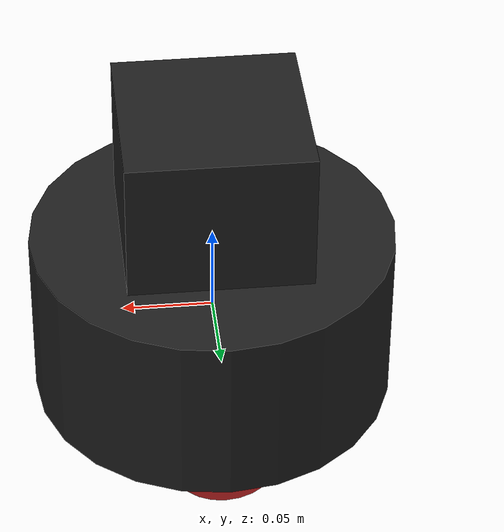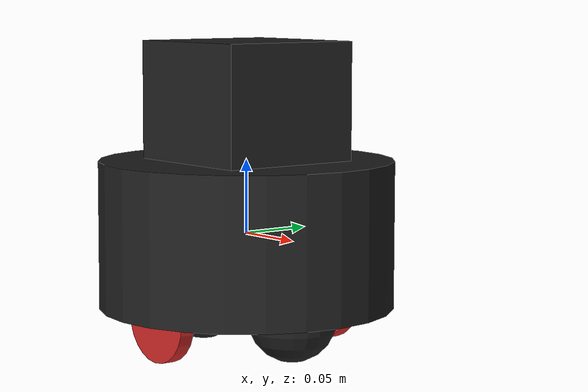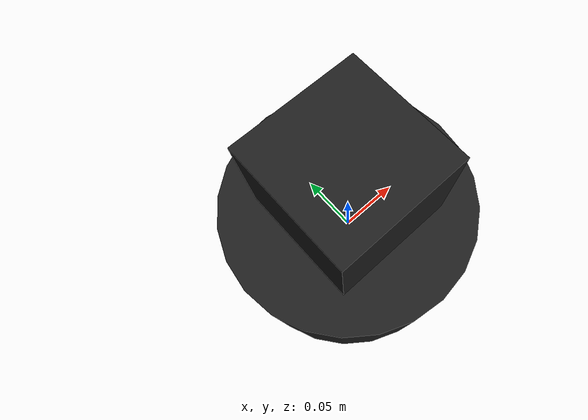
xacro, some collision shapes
<?xml version='1.0'?>
<robot name="robot" xmlns:xacro="http://www.ros.org/wiki/xacro">

  <xacro:include filename="$(find obstacle_avoidance_simulation)/urdf/robot.gazebo" />
  <link name="robot_footprint"></link>

<gazebo reference="left_wheel">
    <material>Gazebo/Red</material>
</gazebo>

<gazebo reference="right_wheel">
    <material>Gazebo/Red</material>
</gazebo>

<gazebo reference="chassis">
    <material>Gazebo/Black</material>
</gazebo>

<link name='chassis'>
    <pose>0 0 0.1 0 0 0</pose>

    <inertial>
      <mass value="15.0"/>
      <origin xyz="0.0 0 0" rpy=" 0 0 0"/>
      <inertia
          ixx="0.1" ixy="0" ixz="0"
          iyy="0.1" iyz="0"
          izz="0.1"
      />
    </inertial>

    <collision name='collision'>
	     <!--origin xyz="0 0 0" rpy=" 0 0 0"/-->
      <origin xyz="0 0 0" rpy=" 0 0 0"/>
      <geometry>
        <!--box size=".4 .2 .1"/-->
		<cylinder radius="0.1" length="0.1"/>
      </geometry>
    </collision>

    <visual name='chassis_visual'>
      <!--origin xyz="0 0 0" rpy=" 0 0 0"/-->
	  <origin xyz="0 0 0" rpy=" 0 0 0"/>
      <geometry>
        <!--box size=".4 .2 .1"/-->
		<cylinder radius="0.1" length="0.1"/>
      </geometry>
    </visual>

    <collision name='back_caster_collision'>
      <origin xyz="-0.05 0 -0.05" rpy=" 0 0 0"/>
      <geometry>
        <sphere radius="0.0299"/>
      </geometry>
    </collision>

    <visual name='back_caster_visual'>
      <origin xyz="-0.05 0 -0.05" rpy=" 0 0 0"/>
      <geometry>
        <sphere radius="0.03"/>
      </geometry>
    </visual>

    <collision name='front_caster_collision'>
      <origin xyz="0.05 0 -0.05" rpy=" 0 0 0"/>
      <geometry>
        <sphere radius="0.0299"/>
      </geometry>
    </collision>

    <visual name='front_caster_visual'>
      <origin xyz="0.05 0 -0.05" rpy=" 0 0 0"/>
      <geometry>
        <sphere radius="0.03"/>
      </geometry>
    </visual>

  </link>

<link name='left_wheel'>
    <inertial>
      <mass value="5.0"/>
      <origin xyz="0.0 0 0" rpy=" 0 0 0"/>
      <inertia
          ixx="0.1" ixy="0" ixz="0"
          iyy="0.1" iyz="0"
          izz="0.1"
      />
    </inertial>

    <visual name='left_wheel_visual'>
      <origin xyz="0 0 0" rpy=" 0 1.5707 1.5707"/>
      <geometry>
        <cylinder radius="0.03" length="0.01"/>
      </geometry>
    </visual>

    <collision name='left_wheel_collision'>
      <origin xyz="0 0 0" rpy=" 0 1.5707 1.5707"/>
      <geometry>
        <cylinder radius="0.03" length="0.01"/>
      </geometry>
    </collision>

 </link>

<link name='right_wheel'>
    <inertial>
      <mass value="5.0"/>
      <origin xyz="0.0 0 0" rpy=" 0 0 0"/>
      <inertia
          ixx="0.1" ixy="0" ixz="0"
          iyy="0.1" iyz="0"
          izz="0.1"
      />
    </inertial>

    <visual name='right_wheel_visual'>
      <origin xyz="0 0 0" rpy=" 0 1.5707 1.5707"/>
      <geometry>
        <cylinder radius="0.03" length="0.01"/>
      </geometry>
    </visual>

    <collision name='right_wheel_collision'>
      <origin xyz="0 0 0" rpy=" 0 1.5707 1.5707"/>
      <geometry>
        <cylinder radius="0.03" length="0.01"/>
      </geometry>
    </collision>
 </link>

  <link name='hokuyo'>
    <inertial>
      <mass value="1e-5"/>
      <origin xyz="0 0 0" rpy=" 0 0 0"/>
      <inertia
	  ixx="1e-6" ixy="0" ixz="0"
	  iyy="1e-6" iyz="0"
	  izz="1e-6"
      />
    </inertial>

    <visual name='hokuyo_visual'>
      <origin xyz="0 0 0" rpy=" 0 0 0"/>
      <geometry>
	<mesh filename="package://obstacle_avoidance_simulation/meshes/hokuyo.dae"/>
      </geometry>
    </visual>

    <collision name='hokuyo_collision'>
      <origin xyz="0 0 0" rpy=" 0 0 0"/>
      <geometry>
	<box size=".1 .1 .1"/>
      </geometry>
    </collision>
  </link>

<!-- Joints -->

  <joint name="robot_footprint_joint" type="fixed">
    <origin xyz="0 0 0" rpy="0 0 0" />
    <parent link="robot_footprint"/>
    <child link="chassis" />
  </joint>

   <joint type="continuous" name="left_wheel_hinge">
    <origin xyz="0 0.07 -0.05" rpy="0 0 0"/>
    <child link="left_wheel"/>
    <parent link="chassis"/>
    <axis xyz="0 1 0" rpy="0 0 0"/>
    <limit effort="10000" velocity="1000"/>
    <dynamics damping="1.0" friction="1.0"/>
  </joint>

<joint type="continuous" name="right_wheel_hinge">
    <origin xyz="0 -0.07 -0.05" rpy="0 0 0"/>
    <child link="right_wheel"/>
    <parent link="chassis"/>
    <axis xyz="0 1 0" rpy="0 0 0"/>
    <limit effort="10000" velocity="1000"/>
    <dynamics damping="1.0" friction="1.0"/>
  </joint>

<joint type="fixed" name="hokuyo_joint">
    <origin xyz="0 0 .08" rpy="0 0 0"/>
    <child link="hokuyo"/>
    <parent link="chassis"/>
    <axis xyz="0 1 0" rpy="0 0 0"/>
  </joint>

</robot>
